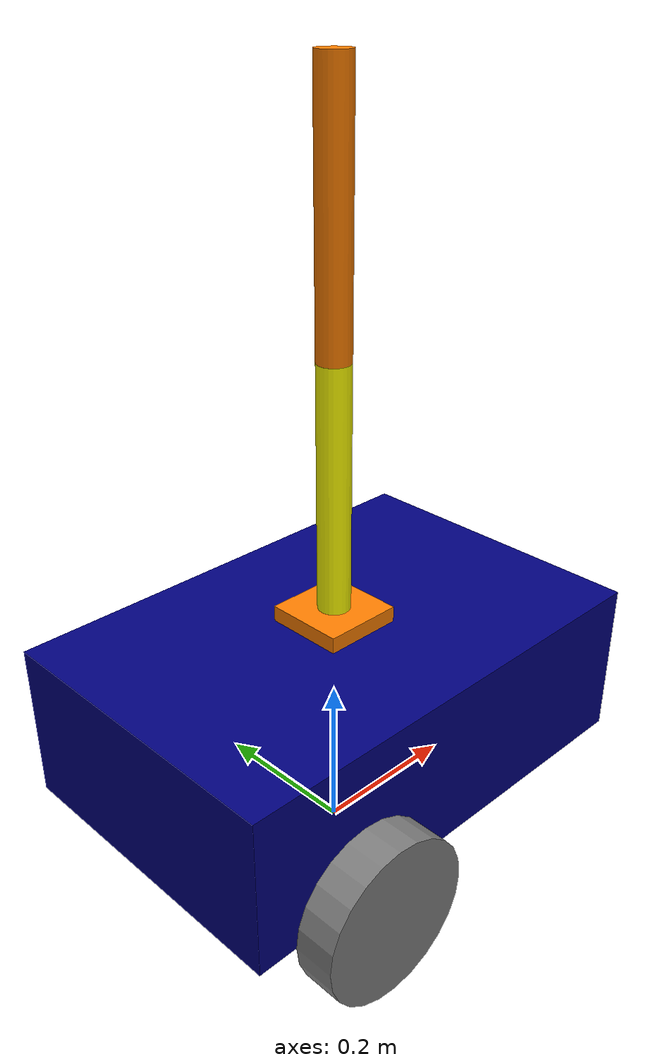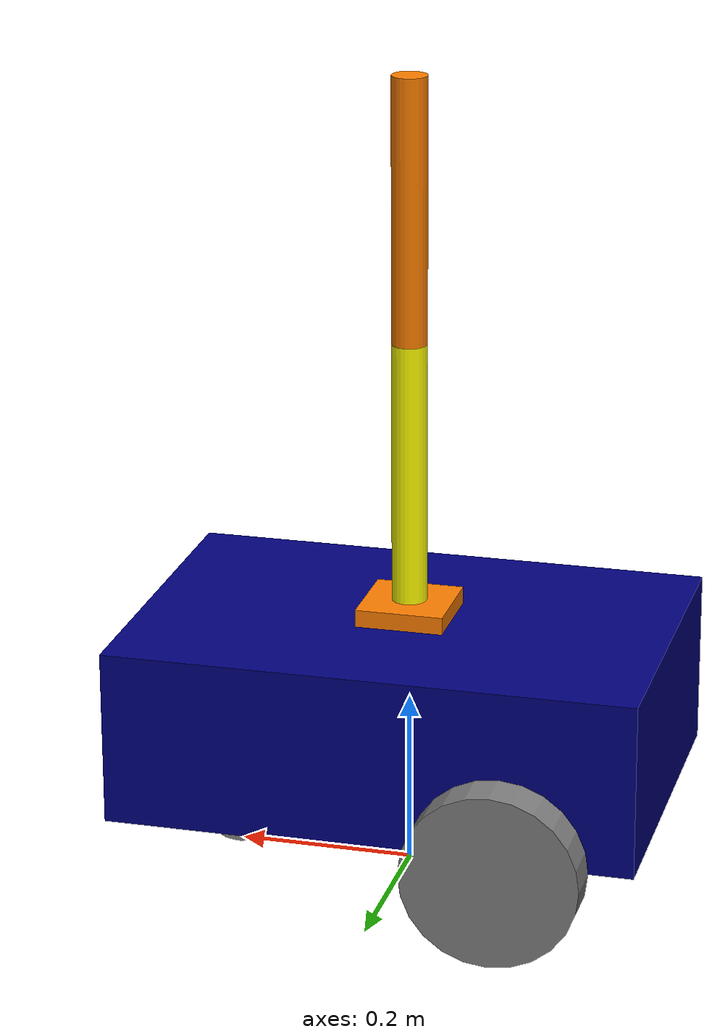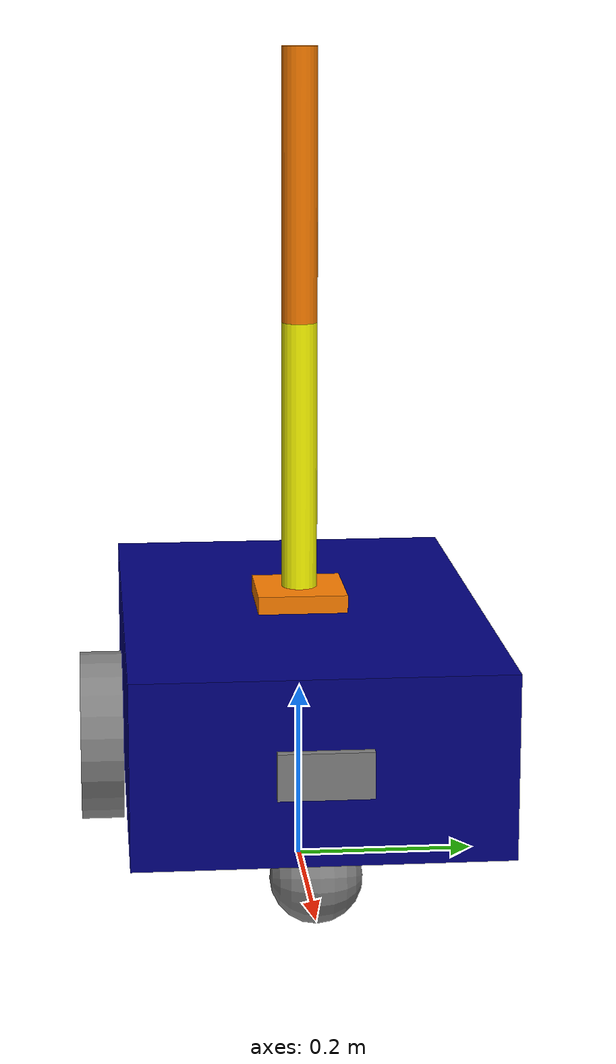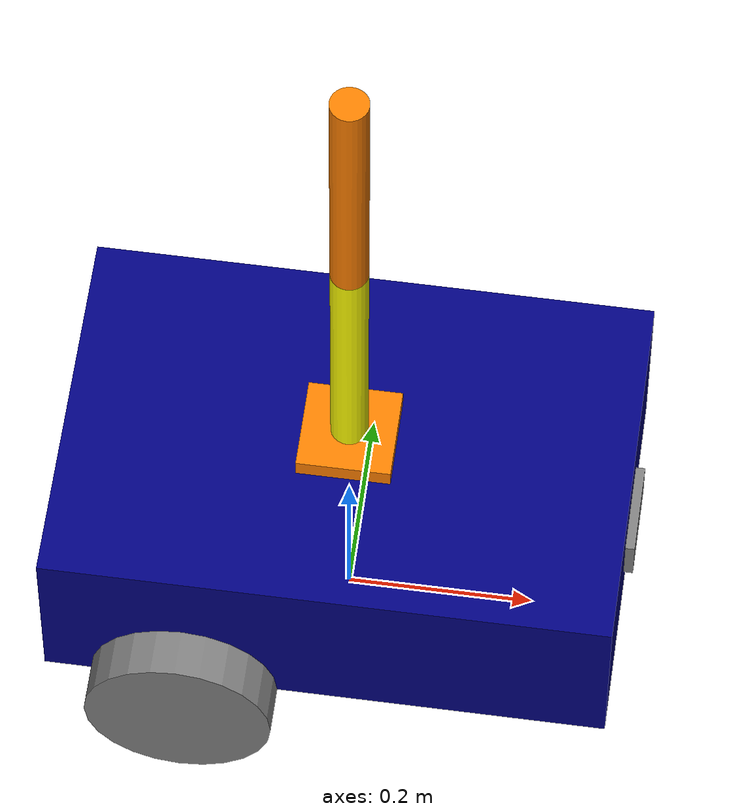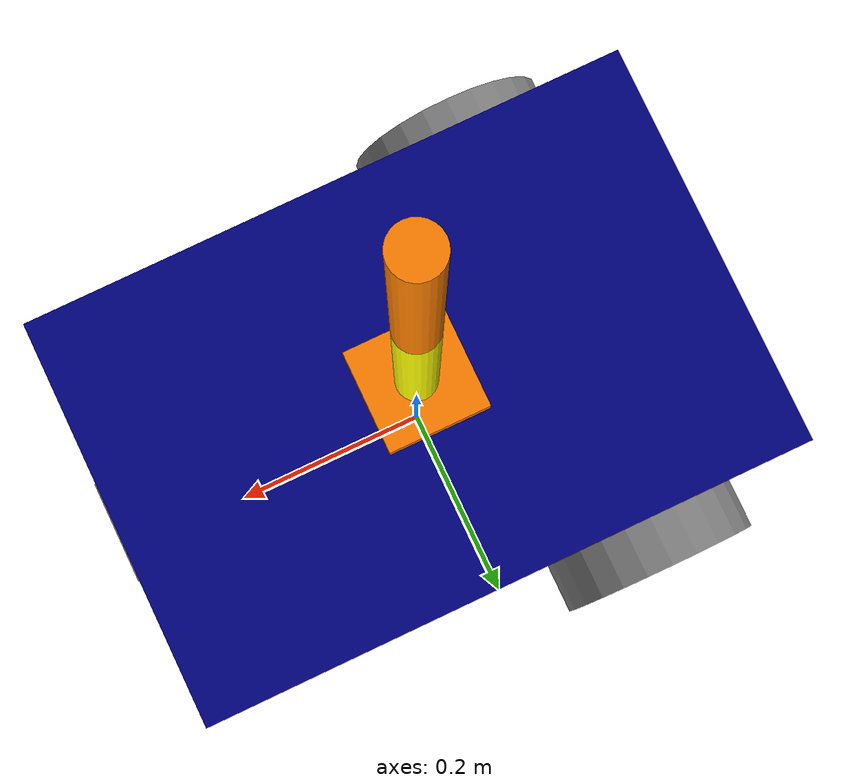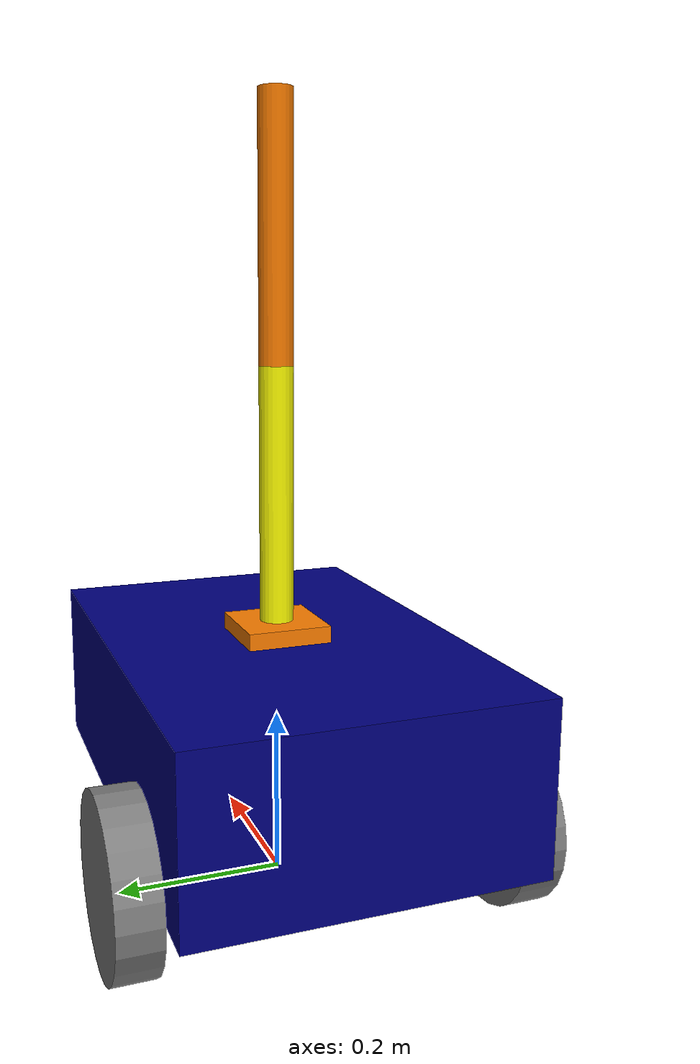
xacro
<?xml version="1.0"?>
<robot name="my_robot" xmlns:xacro="http://www.ros.org/wiki/xacro">

    <xacro:include filename="common_properties.xacro" />
    <xacro:include filename="mobile_base.xacro" />
    <xacro:include filename="mobile_base_gazebo.xacro" />
    <xacro:include filename="camera.xacro" />
    <xacro:include filename="arm.xacro" />

</robot>

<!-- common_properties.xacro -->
<robot xmlns:xacro="http://www.ros.org/wiki/xacro">

    <material name="blue">
        <color rgba="0 0 0.5 1" />
    </material>
    <material name="grey">
        <color rgba="0.5 0.5 0.5 1" />
    </material>
    <material name="orange">
        <color rgba="1 0.5 0 1" />
    </material>
    <material name="yellow">
        <color rgba="1 1 0 1" />
    </material>

    <xacro:macro name="box_inertia" params="m x y z o_xyz o_rpy">
        <inertial>
            <mass value="${m}" />
            <origin xyz="${o_xyz}" rpy="${o_rpy}" />
            <inertia ixx="${(m/12) * (y*y + z*z)}" ixy="0" ixz="0"
                     iyy="${(m/12) * (x*x + z*z)}" iyz="0"
                     izz="${(m/12) * (y*y + x*x)}" />
        </inertial>
    </xacro:macro>

    <xacro:macro name="cylinder_inertia" params="m radius length o_xyz o_rpy">
    <inertial>
        <mass value="${m}" />
        <origin xyz="${o_xyz}" rpy="${o_rpy}" />
        <inertia ixx="${(m/12) * (3*radius*radius + length*length)}" ixy="0" ixz="0"
                 iyy="${(m/12) * (3*radius*radius + length*length)}" iyz="0"
                 izz="${(m/2) * (radius*radius)}" />
    </inertial>
    </xacro:macro>

    <xacro:macro name="sphere_inertia" params="m radius o_xyz o_rpy">
    <inertial>
        <mass value="${m}" />
        <origin xyz="${o_xyz}" rpy="${o_rpy}" />
        <inertia ixx="${(2/5) * m * (radius*radius)}" ixy="0" ixz="0"
                 iyy="${(2/5) * m * (radius*radius)}" iyz="0"
                 izz="${(2/5) * m * (radius*radius)}" />
    </inertial>
    </xacro:macro>
</robot>

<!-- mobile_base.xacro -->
<robot name="my_robot" xmlns:xacro="http://www.ros.org/wiki/xacro">
<!-- Common Mobile Base Properties -->
    <xacro:property name="base_length" value="0.6" />
    <xacro:property name="base_width" value="0.4" />
    <xacro:property name="base_height" value="0.2" />
    <xacro:property name="wheel_radius" value="0.1" />
    <xacro:property name="wheel_width" value="0.05" />
    <xacro:property name="caster_radius" value="0.05" />

<!-- Mobile Base Links -->
    <link name="base_footprint"/>

    <link name="base_link">
        <visual>
            <geometry>
                <box size="${base_length}  ${base_width}  ${base_height}" />
            </geometry>
            <origin xyz="0 0 ${base_height / 2.0}" rpy="0 0 0"/>
            <material name="blue" />
        </visual>
        <collision>
            <geometry>
                <box size="${base_length}  ${base_width}  ${base_height}" />
            </geometry>
            <origin xyz="0 0 ${base_height / 2.0}" rpy="0 0 0" />
        </collision>
        <xacro:box_inertia m="5.0" x="${base_length}" y="${base_width}" z="${base_height}"
                    o_xyz="0 0 ${base_height / 2.0}" o_rpy="0 0 0" />
    </link>

    <link name="right_wheel_link">
        <visual>
            <geometry>
                <cylinder radius="${wheel_radius}" length="${wheel_width}" />
            </geometry>
            <origin xyz="0 ${-wheel_width / 2.0} 0" rpy="${pi / 2.0} 0 0"/>
            <material name="grey" />
        </visual>
        <collision>
            <geometry>
                <sphere radius="${wheel_radius}" />
            </geometry>
            <origin xyz="0 ${-wheel_width / 2.0} 0" rpy="${pi / 2.0} 0 0" />
        </collision>
        <xacro:cylinder_inertia m="2.0" radius="${wheel_radius}" length="${wheel_width}"
                    o_xyz="0 ${-wheel_width / 2.0} 0" o_rpy="${pi / 2.0} 0 0" />
    </link>

    <link name="left_wheel_link">
        <visual>
            <geometry>
                <cylinder radius="${wheel_radius}" length="${wheel_width}" />
            </geometry>
            <origin xyz="0 ${wheel_width / 2.0} 0" rpy="${-pi / 2.0} 0 0"/>
            <material name="grey" />
        </visual>
        <collision>
            <geometry>
                <sphere radius="${wheel_radius}" />
            </geometry>
            <origin xyz="0 ${wheel_width / 2.0} 0" rpy="${pi / 2.0} 0 0" />
        </collision>
        <xacro:cylinder_inertia m="2.0" radius="${wheel_radius}" length="${wheel_width}"
                    o_xyz="0 ${wheel_width / 2.0} 0" o_rpy="${-pi / 2.0} 0 0" />
    </link>

    <link name="caster_wheel_link">
        <visual>
            <geometry>
                <sphere radius="${wheel_radius / 2.0}" />
            </geometry>
            <origin xyz="0 0 -${wheel_radius / 2.0}" rpy="${-pi / 2.0} 0 0"/>
            <material name="grey" />
        </visual>
        <collision>
            <geometry>
                <sphere radius="${wheel_radius / 2.0}" />
            </geometry>
            <origin xyz="0 0 -${wheel_radius / 2.0}" rpy="${-pi / 2.0} 0 0"/>
        </collision>
        <xacro:sphere_inertia m="1.0" radius="${caster_radius}"
                    o_xyz="0 0 -${wheel_radius / 2.0}" o_rpy="${-pi / 2.0} 0 0" />
    </link>

<!-- Mobile Base Joints -->
    <joint name="base_joint" type="fixed">
        <parent link="base_footprint" />
        <child link="base_link" />
        <origin xyz="0 0 0.1" rpy="0 0 0"/>
    </joint>

    <joint name="base_right_wheel_joint" type="continuous">
        <parent link="base_link" />
        <child link="right_wheel_link" />
        <origin xyz="${-base_length / 4.0} ${-base_width / 2.0} 0" rpy="0 0 0"/>
        <axis xyz="0 1 0" />
    </joint>

    <joint name="base_left_wheel_joint" type="continuous">
        <parent link="base_link" />
        <child link="left_wheel_link" />
        <origin xyz="${-base_length / 4.0} ${base_width / 2.0} 0" rpy="0 0 0"/>
        <axis xyz="0 1 0" />
    </joint>

    <joint name="base_caster_wheel_joint" type="fixed">
        <parent link="base_link" />
        <child link="caster_wheel_link" />
        <origin xyz="${base_length / 3.0} 0 0" rpy="0 0 0"/>
    </joint>

</robot>

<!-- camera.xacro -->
<robot name="my_robot" xmlns:xacro="http://www.ros.org/wiki/xacro">
    <xacro:property name="camera_length" value="0.01" />
    <xacro:property name="camera_width" value="0.1" />
    <xacro:property name="camera_height" value="0.05" />

    <link name="camera_link">
        <visual>
            <geometry>
                <box size="${camera_length}  ${camera_width}  ${camera_height}" />
            </geometry>
            <origin xyz="${camera_length/2.0} 0 0" rpy="0 0 0"/>
            <material name="grey" />
        </visual>
        <collision>
            <geometry>
                <box size="${camera_length}  ${camera_width}  ${camera_height}" />
            </geometry>
            <origin xyz="${camera_length/2.0} 0 0" rpy="0 0 0" />
        </collision>
        <xacro:box_inertia m="5.0" x="${camera_length}" y="${camera_width}" z="${camera_height}"
            o_xyz="${camera_length/2.0} 0 0" o_rpy="0 0 0" />

    </link>

    <joint name="base_camera_joint" type="fixed">
        <parent link="base_link" />
        <child link="camera_link" />
        <origin xyz="${base_length/2.0} 0 ${base_height/2.0}" rpy="0 0 0"/>
    </joint>

    <gazebo reference="camera_link">
        <sensor name="camera" type="camera">
            <camera>
                <horizontal_fov>1.3962634</horizontal_fov>
                <image>
                    <width>640</width>
                    <height>480</height>
                    <format>R8G8B8</format>
                </image>
                <clip>
                    <near>0.1</near>
                    <far>15</far>
                </clip>
                <noise>
                    <type>gaussian</type>
                    <mean>0.0</mean>
                    <stddev>0.007</stddev>
                </noise>
                <optical_frame_id>camera_link</optical_frame_id>
                <camera_info_topic>camera/camera_info</camera_info_topic>
            </camera>
            <always_on>1</always_on>
            <update_rate>20</update_rate>
            <visualize>true</visualize>
            <topic>camera/image_raw</topic>
        </sensor>
    </gazebo>
</robot>

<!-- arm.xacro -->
<robot name="my_robot" xmlns:xacro="http://www.ros.org/wiki/xacro">
    <xacro:property name="arm_base_length" value="0.1" />
    <xacro:property name="arm_base_width" value="0.1" />
    <xacro:property name="arm_base_height" value="0.02" />
    <xacro:property name="forearm_radius" value="0.02" />
    <xacro:property name="forearm_length" value="0.3" />
    <xacro:property name="hand_radius" value="0.02" />
    <xacro:property name="hand_length" value="0.3" />

<!-- Arm Links -->
    <link name="arm_base_link">
        <visual>
            <geometry>
                <box size="${arm_base_length}  ${arm_base_width}  ${arm_base_height}" />
            </geometry>
            <origin xyz="0 0 ${arm_base_height/2.0}" rpy="0 0 0"/>
            <material name="orange" />
        </visual>
        <collision>
            <geometry>
                <box size="${arm_base_length}  ${arm_base_width}  ${arm_base_height}" />
            </geometry>
            <origin xyz="0 0 ${arm_base_height/2.0}" rpy="0 0 0"/>
        </collision>
        <xacro:box_inertia m="0.5" x="${arm_base_length}" y="${arm_base_width}" z="${arm_base_height}"
            o_xyz="0 0 ${arm_base_height / 2.0}" o_rpy="0 0 0" />
    </link>

    <link name="forearm_link">
        <visual>
            <geometry>
                <cylinder radius="${forearm_radius}" length="${forearm_length}" />
            </geometry>
            <origin xyz="0 0 ${forearm_length/2.0}" rpy="0 0 0"/>
            <material name="yellow" />
        </visual>
        <collision>
            <geometry>
                <cylinder radius="${forearm_radius}" length="${forearm_length}" />
            </geometry>
            <origin xyz="0 0 ${forearm_length/2.0}" rpy="0 0 0"/>
        </collision>
        <xacro:cylinder_inertia m="0.3" radius="${forearm_radius}" length="${forearm_length}"
            o_xyz="0 0 ${forearm_length / 2.0}" o_rpy="0 0 0" />

    </link>

    <link name="hand_link">
        <visual>
            <geometry>
                <cylinder radius="${hand_radius}" length="${hand_length}" />
            </geometry>
            <origin xyz="0 0 ${hand_length/2.0}" rpy="0 0 0"/>
            <material name="orange" />
        </visual>
        <collision>
            <geometry>
                <cylinder radius="${hand_radius}" length="${hand_length}" />
            </geometry>
            <origin xyz="0 0 ${hand_length/2.0}" rpy="0 0 0"/>
        </collision>
        <xacro:cylinder_inertia m="0.3" radius="${hand_radius}" length="${hand_length}"
            o_xyz="0 0 ${hand_length / 2.0}" o_rpy="0 0 0" />
    </link>

<!-- Joints -->
    <joint name="arm_base_forearm_joint" type="revolute">
        <parent link="arm_base_link" />
        <child link="forearm_link" />
        <limit lower="0" upper="${pi/2.0}" effort="100" velocity="100" />
        <dynamics friction="0.3" damping="0.3" />
        <origin xyz="0 0 ${arm_base_height}" rpy="0 0 0"/>
        <axis xyz="0 1 0" />
    </joint>

    <joint name="forearm_hand_joint" type="revolute">
        <parent link="forearm_link" />
        <child link="hand_link" />
        <limit lower="0" upper="${pi/2.0}" effort="100" velocity="100" />
        <dynamics friction="0.3" damping="0.3" />
        <origin xyz="0 0 ${forearm_length}" rpy="0 0 0"/>
        <axis xyz="0 1 0" />
    </joint>

    <joint name="base_arm_base_joint" type="fixed">
        <parent link="base_link" />
        <child link="arm_base_link" />
        <origin xyz="0 0 ${base_height}" rpy="0 0 0"/>
    </joint>

<!-- Gazebo Plugins for controlling the arm joints and publishing their states -->
     <gazebo >
        <plugin filename="gz-sim-joint-position-controller-system"
                name="gz::sim::systems::JointPositionController">
            <joint_name>arm_base_forearm_joint</joint_name>
            <p_gain>5.0</p_gain>
            <topic>/arm_base_forearm_joint_position_cmd</topic>
        </plugin>
    </gazebo>

    <gazebo>
        <plugin filename="gz-sim-joint-position-controller-system"
                name="gz::sim::systems::JointPositionController">
            <joint_name>forearm_hand_joint</joint_name>
            <p_gain>3.0</p_gain>
            <topic>/forearm_hand_joint_position_cmd</topic>
        </plugin>
    </gazebo>

</robot>
